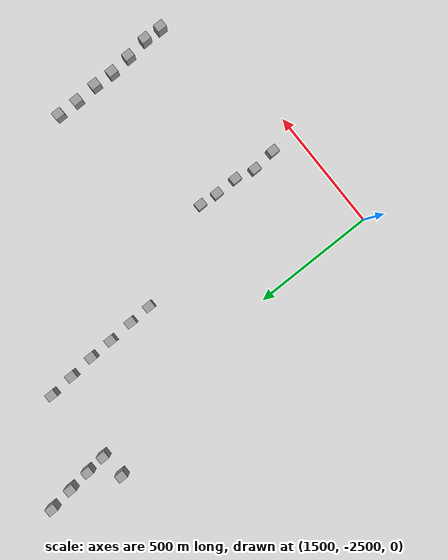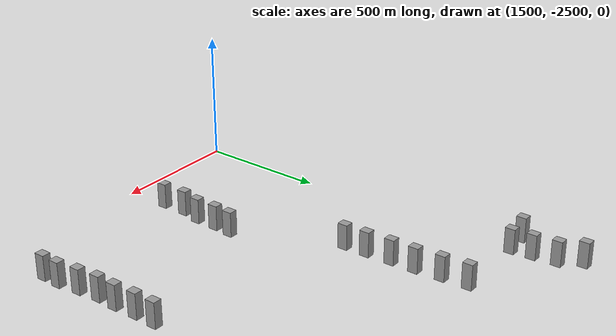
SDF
<sdf version="1.7">
 <world name="default">
  <model name="huge_building">
   <link name="link">
    <inertial>
     <mass>137299</mass>
     <inertia>
      <ixx>1.37911e+08</ixx>
      <ixy>0</ixy>
      <ixz>0</ixz>
      <iyy>1.32035e+08</iyy>
      <iyz>0</iyz>
      <izz>3.13216e+07</izz>
     </inertia>
    </inertial>
    <visual name="visual">
     <geometry><box><size>33.3468 40.3177 102.117</size></box></geometry>
     <material>
      <script><name>Gazebo/Grey</name><uri>file://media/materials/scripts/gazebo.material</uri></script>
      <shader type="pixel"/>
     </material>
    </visual>
    <collision name="collision">
     <geometry><box><size>33.3468 40.3177 102.117</size></box></geometry>
     <surface>
      <friction>
       <ode><mu>1</mu><mu2>1</mu2><fdir1>0 0 0</fdir1><slip1>0</slip1><slip2>0</slip2></ode>
       <torsional>
        <coefficient>1</coefficient>
        <patch_radius>0</patch_radius>
        <surface_radius>0</surface_radius>
        <use_patch_radius>1</use_patch_radius>
        <ode><slip>0</slip></ode>
       </torsional>
      </friction>
      <bounce><restitution_coefficient>0</restitution_coefficient><threshold>1e+06</threshold></bounce>
      <contact>
       <collide_without_contact>0</collide_without_contact>
       <collide_without_contact_bitmask>1</collide_without_contact_bitmask>
       <collide_bitmask>1</collide_bitmask>
       <ode>
        <soft_cfm>0</soft_cfm>
        <soft_erp>0.2</soft_erp>
        <kp>1e+13</kp>
        <kd>1</kd>
        <max_vel>0.01</max_vel>
        <min_depth>0</min_depth>
       </ode>
       <bullet>
        <split_impulse>1</split_impulse>
        <split_impulse_penetration_threshold>-0.01</split_impulse_penetration_threshold>
        <soft_cfm>0</soft_cfm>
        <soft_erp>0.2</soft_erp>
        <kp>1e+13</kp>
        <kd>1</kd>
       </bullet>
      </contact>
     </surface>
    </collision>
   </link>
   <static>0</static>
   <pose>2573.26 -2347.73 0.5 0 -0 0</pose>
  </model>
  <model name="huge_building_0">
   <link name="link">
    <inertial>
     <mass>137299</mass>
     <inertia>
      <ixx>1.37911e+08</ixx>
      <ixy>0</ixy>
      <ixz>0</ixz>
      <iyy>1.32035e+08</iyy>
      <iyz>0</iyz>
      <izz>3.13216e+07</izz>
     </inertia>
    </inertial>
    <visual name="visual">
     <geometry><box><size>33.3468 40.3177 102.117</size></box></geometry>
     <material>
      <script><name>Gazebo/Grey</name><uri>file://media/materials/scripts/gazebo.material</uri></script>
      <shader type="pixel"/>
     </material>
    </visual>
    <collision name="collision">
     <geometry><box><size>33.3468 40.3177 102.117</size></box></geometry>
     <surface>
      <friction>
       <ode><mu>1</mu><mu2>1</mu2><fdir1>0 0 0</fdir1><slip1>0</slip1><slip2>0</slip2></ode>
       <torsional>
        <coefficient>1</coefficient>
        <patch_radius>0</patch_radius>
        <surface_radius>0</surface_radius>
        <use_patch_radius>1</use_patch_radius>
        <ode><slip>0</slip></ode>
       </torsional>
      </friction>
      <bounce><restitution_coefficient>0</restitution_coefficient><threshold>1e+06</threshold></bounce>
      <contact>
       <collide_without_contact>0</collide_without_contact>
       <collide_without_contact_bitmask>1</collide_without_contact_bitmask>
       <collide_bitmask>1</collide_bitmask>
       <ode>
        <soft_cfm>0</soft_cfm>
        <soft_erp>0.2</soft_erp>
        <kp>1e+13</kp>
        <kd>1</kd>
        <max_vel>0.01</max_vel>
        <min_depth>0</min_depth>
       </ode>
       <bullet>
        <split_impulse>1</split_impulse>
        <split_impulse_penetration_threshold>-0.01</split_impulse_penetration_threshold>
        <soft_cfm>0</soft_cfm>
        <soft_erp>0.2</soft_erp>
        <kp>1e+13</kp>
        <kd>1</kd>
       </bullet>
      </contact>
     </surface>
    </collision>
   </link>
   <static>0</static>
   <pose>1927.83 -2388.05 6 0 -0 0</pose>
  </model>
  <model name="huge_building_2">
   <link name="link">
    <inertial>
     <mass>137299</mass>
     <inertia>
      <ixx>1.37911e+08</ixx>
      <ixy>0</ixy>
      <ixz>0</ixz>
      <iyy>1.32035e+08</iyy>
      <iyz>0</iyz>
      <izz>3.13216e+07</izz>
     </inertia>
    </inertial>
    <visual name="visual">
     <geometry><box><size>33.3468 40.3177 102.117</size></box></geometry>
     <material>
      <script><name>Gazebo/Grey</name><uri>file://media/materials/scripts/gazebo.material</uri></script>
      <shader type="pixel"/>
     </material>
    </visual>
    <collision name="collision">
     <geometry><box><size>33.3468 40.3177 102.117</size></box></geometry>
     <surface>
      <friction>
       <ode><mu>1</mu><mu2>1</mu2><fdir1>0 0 0</fdir1><slip1>0</slip1><slip2>0</slip2></ode>
       <torsional>
        <coefficient>1</coefficient>
        <patch_radius>0</patch_radius>
        <surface_radius>0</surface_radius>
        <use_patch_radius>1</use_patch_radius>
        <ode><slip>0</slip></ode>
       </torsional>
      </friction>
      <bounce><restitution_coefficient>0</restitution_coefficient><threshold>1e+06</threshold></bounce>
      <contact>
       <collide_without_contact>0</collide_without_contact>
       <collide_without_contact_bitmask>1</collide_without_contact_bitmask>
       <collide_bitmask>1</collide_bitmask>
       <ode>
        <soft_cfm>0</soft_cfm>
        <soft_erp>0.2</soft_erp>
        <kp>1e+13</kp>
        <kd>1</kd>
        <max_vel>0.01</max_vel>
        <min_depth>0</min_depth>
       </ode>
       <bullet>
        <split_impulse>1</split_impulse>
        <split_impulse_penetration_threshold>-0.01</split_impulse_penetration_threshold>
        <soft_cfm>0</soft_cfm>
        <soft_erp>0.2</soft_erp>
        <kp>1e+13</kp>
        <kd>1</kd>
       </bullet>
      </contact>
     </surface>
    </collision>
   </link>
   <static>0</static>
   <pose>1380.82 -867.37 23 0 -0 0</pose>
  </model>
  <model name="huge_building_10">
   <link name="link">
    <inertial>
     <mass>137299</mass>
     <inertia>
      <ixx>1.37911e+08</ixx>
      <ixy>0</ixy>
      <ixz>0</ixz>
      <iyy>1.32035e+08</iyy>
      <iyz>0</iyz>
      <izz>3.13216e+07</izz>
     </inertia>
    </inertial>
    <visual name="visual">
     <geometry><box><size>33.3468 40.3177 102.117</size></box></geometry>
     <material>
      <script><name>Gazebo/Grey</name><uri>file://media/materials/scripts/gazebo.material</uri></script>
      <shader type="pixel"/>
     </material>
    </visual>
    <collision name="collision">
     <geometry><box><size>33.3468 40.3177 102.117</size></box></geometry>
     <surface>
      <friction>
       <ode><mu>1</mu><mu2>1</mu2><fdir1>0 0 0</fdir1><slip1>0</slip1><slip2>0</slip2></ode>
       <torsional>
        <coefficient>1</coefficient>
        <patch_radius>0</patch_radius>
        <surface_radius>0</surface_radius>
        <use_patch_radius>1</use_patch_radius>
        <ode><slip>0</slip></ode>
       </torsional>
      </friction>
      <bounce><restitution_coefficient>0</restitution_coefficient><threshold>1e+06</threshold></bounce>
      <contact>
       <collide_without_contact>0</collide_without_contact>
       <collide_without_contact_bitmask>1</collide_without_contact_bitmask>
       <collide_bitmask>1</collide_bitmask>
       <ode>
        <soft_cfm>0</soft_cfm>
        <soft_erp>0.2</soft_erp>
        <kp>1e+13</kp>
        <kd>1</kd>
        <max_vel>0.01</max_vel>
        <min_depth>0</min_depth>
       </ode>
       <bullet>
        <split_impulse>1</split_impulse>
        <split_impulse_penetration_threshold>-0.01</split_impulse_penetration_threshold>
        <soft_cfm>0</soft_cfm>
        <soft_erp>0.2</soft_erp>
        <kp>1e+13</kp>
        <kd>1</kd>
       </bullet>
      </contact>
     </surface>
    </collision>
   </link>
   <static>0</static>
   <pose>1917.56 -2291.93 0 0 -0 0</pose>
  </model>
  <model name="huge_building_11">
   <link name="link">
    <inertial>
     <mass>137299</mass>
     <inertia>
      <ixx>1.37911e+08</ixx>
      <ixy>0</ixy>
      <ixz>0</ixz>
      <iyy>1.32035e+08</iyy>
      <iyz>0</iyz>
      <izz>3.13216e+07</izz>
     </inertia>
    </inertial>
    <visual name="visual">
     <geometry><box><size>33.3468 40.3177 102.117</size></box></geometry>
     <material>
      <script><name>Gazebo/Grey</name><uri>file://media/materials/scripts/gazebo.material</uri></script>
      <shader type="pixel"/>
     </material>
    </visual>
    <collision name="collision">
     <geometry><box><size>33.3468 40.3177 102.117</size></box></geometry>
     <surface>
      <friction>
       <ode><mu>1</mu><mu2>1</mu2><fdir1>0 0 0</fdir1><slip1>0</slip1><slip2>0</slip2></ode>
       <torsional>
        <coefficient>1</coefficient>
        <patch_radius>0</patch_radius>
        <surface_radius>0</surface_radius>
        <use_patch_radius>1</use_patch_radius>
        <ode><slip>0</slip></ode>
       </torsional>
      </friction>
      <bounce><restitution_coefficient>0</restitution_coefficient><threshold>1e+06</threshold></bounce>
      <contact>
       <collide_without_contact>0</collide_without_contact>
       <collide_without_contact_bitmask>1</collide_without_contact_bitmask>
       <collide_bitmask>1</collide_bitmask>
       <ode>
        <soft_cfm>0</soft_cfm>
        <soft_erp>0.2</soft_erp>
        <kp>1e+13</kp>
        <kd>1</kd>
        <max_vel>0.01</max_vel>
        <min_depth>0</min_depth>
       </ode>
       <bullet>
        <split_impulse>1</split_impulse>
        <split_impulse_penetration_threshold>-0.01</split_impulse_penetration_threshold>
        <soft_cfm>0</soft_cfm>
        <soft_erp>0.2</soft_erp>
        <kp>1e+13</kp>
        <kd>1</kd>
       </bullet>
      </contact>
     </surface>
    </collision>
   </link>
   <static>0</static>
   <pose>2575.01 -2273.29 0 0 -0 0</pose>
  </model>
  <model name="huge_building_15">
   <link name="link">
    <inertial>
     <mass>137299</mass>
     <inertia>
      <ixx>1.37911e+08</ixx>
      <ixy>0</ixy>
      <ixz>0</ixz>
      <iyy>1.32035e+08</iyy>
      <iyz>0</iyz>
      <izz>3.13216e+07</izz>
     </inertia>
    </inertial>
    <visual name="visual">
     <geometry><box><size>33.3468 40.3177 102.117</size></box></geometry>
     <material>
      <script><name>Gazebo/Grey</name><uri>file://media/materials/scripts/gazebo.material</uri></script>
      <shader type="pixel"/>
     </material>
    </visual>
    <collision name="collision">
     <geometry><box><size>33.3468 40.3177 102.117</size></box></geometry>
     <surface>
      <friction>
       <ode><mu>1</mu><mu2>1</mu2><fdir1>0 0 0</fdir1><slip1>0</slip1><slip2>0</slip2></ode>
       <torsional>
        <coefficient>1</coefficient>
        <patch_radius>0</patch_radius>
        <surface_radius>0</surface_radius>
        <use_patch_radius>1</use_patch_radius>
        <ode><slip>0</slip></ode>
       </torsional>
      </friction>
      <bounce><restitution_coefficient>0</restitution_coefficient><threshold>1e+06</threshold></bounce>
      <contact>
       <collide_without_contact>0</collide_without_contact>
       <collide_without_contact_bitmask>1</collide_without_contact_bitmask>
       <collide_bitmask>1</collide_bitmask>
       <ode>
        <soft_cfm>0</soft_cfm>
        <soft_erp>0.2</soft_erp>
        <kp>1e+13</kp>
        <kd>1</kd>
        <max_vel>0.01</max_vel>
        <min_depth>0</min_depth>
       </ode>
       <bullet>
        <split_impulse>1</split_impulse>
        <split_impulse_penetration_threshold>-0.01</split_impulse_penetration_threshold>
        <soft_cfm>0</soft_cfm>
        <soft_erp>0.2</soft_erp>
        <kp>1e+13</kp>
        <kd>1</kd>
       </bullet>
      </contact>
     </surface>
    </collision>
   </link>
   <static>0</static>
   <pose>1393.28 -963.742 0 0 -0 0</pose>
  </model>
  <model name="huge_building_16">
   <link name="link">
    <inertial>
     <mass>137299</mass>
     <inertia>
      <ixx>1.37911e+08</ixx>
      <ixy>0</ixy>
      <ixz>0</ixz>
      <iyy>1.32035e+08</iyy>
      <iyz>0</iyz>
      <izz>3.13216e+07</izz>
     </inertia>
    </inertial>
    <visual name="visual">
     <geometry><box><size>33.3468 40.3177 102.117</size></box></geometry>
     <material>
      <script><name>Gazebo/Grey</name><uri>file://media/materials/scripts/gazebo.material</uri></script>
      <shader type="pixel"/>
     </material>
    </visual>
    <collision name="collision">
     <geometry><box><size>33.3468 40.3177 102.117</size></box></geometry>
     <surface>
      <friction>
       <ode><mu>1</mu><mu2>1</mu2><fdir1>0 0 0</fdir1><slip1>0</slip1><slip2>0</slip2></ode>
       <torsional>
        <coefficient>1</coefficient>
        <patch_radius>0</patch_radius>
        <surface_radius>0</surface_radius>
        <use_patch_radius>1</use_patch_radius>
        <ode><slip>0</slip></ode>
       </torsional>
      </friction>
      <bounce><restitution_coefficient>0</restitution_coefficient><threshold>1e+06</threshold></bounce>
      <contact>
       <collide_without_contact>0</collide_without_contact>
       <collide_without_contact_bitmask>1</collide_without_contact_bitmask>
       <collide_bitmask>1</collide_bitmask>
       <ode>
        <soft_cfm>0</soft_cfm>
        <soft_erp>0.2</soft_erp>
        <kp>1e+13</kp>
        <kd>1</kd>
        <max_vel>0.01</max_vel>
        <min_depth>0</min_depth>
       </ode>
       <bullet>
        <split_impulse>1</split_impulse>
        <split_impulse_penetration_threshold>-0.01</split_impulse_penetration_threshold>
        <soft_cfm>0</soft_cfm>
        <soft_erp>0.2</soft_erp>
        <kp>1e+13</kp>
        <kd>1</kd>
       </bullet>
      </contact>
     </surface>
    </collision>
   </link>
   <static>0</static>
   <pose>1405.03 -1058.23 0 0 -0 0</pose>
  </model>
  <model name="huge_building_17">
   <link name="link">
    <inertial>
     <mass>137299</mass>
     <inertia>
      <ixx>1.37911e+08</ixx>
      <ixy>0</ixy>
      <ixz>0</ixz>
      <iyy>1.32035e+08</iyy>
      <iyz>0</iyz>
      <izz>3.13216e+07</izz>
     </inertia>
    </inertial>
    <visual name="visual">
     <geometry><box><size>33.3468 40.3177 102.117</size></box></geometry>
     <material>
      <script><name>Gazebo/Grey</name><uri>file://media/materials/scripts/gazebo.material</uri></script>
      <shader type="pixel"/>
     </material>
    </visual>
    <collision name="collision">
     <geometry><box><size>33.3468 40.3177 102.117</size></box></geometry>
     <surface>
      <friction>
       <ode><mu>1</mu><mu2>1</mu2><fdir1>0 0 0</fdir1><slip1>0</slip1><slip2>0</slip2></ode>
       <torsional>
        <coefficient>1</coefficient>
        <patch_radius>0</patch_radius>
        <surface_radius>0</surface_radius>
        <use_patch_radius>1</use_patch_radius>
        <ode><slip>0</slip></ode>
       </torsional>
      </friction>
      <bounce><restitution_coefficient>0</restitution_coefficient><threshold>1e+06</threshold></bounce>
      <contact>
       <collide_without_contact>0</collide_without_contact>
       <collide_without_contact_bitmask>1</collide_without_contact_bitmask>
       <collide_bitmask>1</collide_bitmask>
       <ode>
        <soft_cfm>0</soft_cfm>
        <soft_erp>0.2</soft_erp>
        <kp>1e+13</kp>
        <kd>1</kd>
        <max_vel>0.01</max_vel>
        <min_depth>0</min_depth>
       </ode>
       <bullet>
        <split_impulse>1</split_impulse>
        <split_impulse_penetration_threshold>-0.01</split_impulse_penetration_threshold>
        <soft_cfm>0</soft_cfm>
        <soft_erp>0.2</soft_erp>
        <kp>1e+13</kp>
        <kd>1</kd>
       </bullet>
      </contact>
     </surface>
    </collision>
   </link>
   <static>0</static>
   <pose>1414.1 -1141.08 0 0 -0 0</pose>
  </model>
  <model name="huge_building_18">
   <link name="link">
    <inertial>
     <mass>137299</mass>
     <inertia>
      <ixx>1.37911e+08</ixx>
      <ixy>0</ixy>
      <ixz>0</ixz>
      <iyy>1.32035e+08</iyy>
      <iyz>0</iyz>
      <izz>3.13216e+07</izz>
     </inertia>
    </inertial>
    <visual name="visual">
     <geometry><box><size>33.3468 40.3177 102.117</size></box></geometry>
     <material>
      <script><name>Gazebo/Grey</name><uri>file://media/materials/scripts/gazebo.material</uri></script>
      <shader type="pixel"/>
     </material>
    </visual>
    <collision name="collision">
     <geometry><box><size>33.3468 40.3177 102.117</size></box></geometry>
     <surface>
      <friction>
       <ode><mu>1</mu><mu2>1</mu2><fdir1>0 0 0</fdir1><slip1>0</slip1><slip2>0</slip2></ode>
       <torsional>
        <coefficient>1</coefficient>
        <patch_radius>0</patch_radius>
        <surface_radius>0</surface_radius>
        <use_patch_radius>1</use_patch_radius>
        <ode><slip>0</slip></ode>
       </torsional>
      </friction>
      <bounce><restitution_coefficient>0</restitution_coefficient><threshold>1e+06</threshold></bounce>
      <contact>
       <collide_without_contact>0</collide_without_contact>
       <collide_without_contact_bitmask>1</collide_without_contact_bitmask>
       <collide_bitmask>1</collide_bitmask>
       <ode>
        <soft_cfm>0</soft_cfm>
        <soft_erp>0.2</soft_erp>
        <kp>1e+13</kp>
        <kd>1</kd>
        <max_vel>0.01</max_vel>
        <min_depth>0</min_depth>
       </ode>
       <bullet>
        <split_impulse>1</split_impulse>
        <split_impulse_penetration_threshold>-0.01</split_impulse_penetration_threshold>
        <soft_cfm>0</soft_cfm>
        <soft_erp>0.2</soft_erp>
        <kp>1e+13</kp>
        <kd>1</kd>
       </bullet>
      </contact>
     </surface>
    </collision>
   </link>
   <static>0</static>
   <pose>1934.74 -2209.04 0 0 -0 0</pose>
  </model>
  <model name="huge_building_19">
   <link name="link">
    <inertial>
     <mass>137299</mass>
     <inertia>
      <ixx>1.37911e+08</ixx>
      <ixy>0</ixy>
      <ixz>0</ixz>
      <iyy>1.32035e+08</iyy>
      <iyz>0</iyz>
      <izz>3.13216e+07</izz>
     </inertia>
    </inertial>
    <visual name="visual">
     <geometry><box><size>33.3468 40.3177 102.117</size></box></geometry>
     <material>
      <script><name>Gazebo/Grey</name><uri>file://media/materials/scripts/gazebo.material</uri></script>
      <shader type="pixel"/>
     </material>
    </visual>
    <collision name="collision">
     <geometry><box><size>33.3468 40.3177 102.117</size></box></geometry>
     <surface>
      <friction>
       <ode><mu>1</mu><mu2>1</mu2><fdir1>0 0 0</fdir1><slip1>0</slip1><slip2>0</slip2></ode>
       <torsional>
        <coefficient>1</coefficient>
        <patch_radius>0</patch_radius>
        <surface_radius>0</surface_radius>
        <use_patch_radius>1</use_patch_radius>
        <ode><slip>0</slip></ode>
       </torsional>
      </friction>
      <bounce><restitution_coefficient>0</restitution_coefficient><threshold>1e+06</threshold></bounce>
      <contact>
       <collide_without_contact>0</collide_without_contact>
       <collide_without_contact_bitmask>1</collide_without_contact_bitmask>
       <collide_bitmask>1</collide_bitmask>
       <ode>
        <soft_cfm>0</soft_cfm>
        <soft_erp>0.2</soft_erp>
        <kp>1e+13</kp>
        <kd>1</kd>
        <max_vel>0.01</max_vel>
        <min_depth>0</min_depth>
       </ode>
       <bullet>
        <split_impulse>1</split_impulse>
        <split_impulse_penetration_threshold>-0.01</split_impulse_penetration_threshold>
        <soft_cfm>0</soft_cfm>
        <soft_erp>0.2</soft_erp>
        <kp>1e+13</kp>
        <kd>1</kd>
       </bullet>
      </contact>
     </surface>
    </collision>
   </link>
   <static>0</static>
   <pose>1934.12 -2118.06 0 0 -0 0</pose>
  </model>
  <model name="huge_building_20">
   <link name="link">
    <inertial>
     <mass>137299</mass>
     <inertia>
      <ixx>1.37911e+08</ixx>
      <ixy>0</ixy>
      <ixz>0</ixz>
      <iyy>1.32035e+08</iyy>
      <iyz>0</iyz>
      <izz>3.13216e+07</izz>
     </inertia>
    </inertial>
    <visual name="visual">
     <geometry><box><size>33.3468 40.3177 102.117</size></box></geometry>
     <material>
      <script><name>Gazebo/Grey</name><uri>file://media/materials/scripts/gazebo.material</uri></script>
      <shader type="pixel"/>
     </material>
    </visual>
    <collision name="collision">
     <geometry><box><size>33.3468 40.3177 102.117</size></box></geometry>
     <surface>
      <friction>
       <ode><mu>1</mu><mu2>1</mu2><fdir1>0 0 0</fdir1><slip1>0</slip1><slip2>0</slip2></ode>
       <torsional>
        <coefficient>1</coefficient>
        <patch_radius>0</patch_radius>
        <surface_radius>0</surface_radius>
        <use_patch_radius>1</use_patch_radius>
        <ode><slip>0</slip></ode>
       </torsional>
      </friction>
      <bounce><restitution_coefficient>0</restitution_coefficient><threshold>1e+06</threshold></bounce>
      <contact>
       <collide_without_contact>0</collide_without_contact>
       <collide_without_contact_bitmask>1</collide_without_contact_bitmask>
       <collide_bitmask>1</collide_bitmask>
       <ode>
        <soft_cfm>0</soft_cfm>
        <soft_erp>0.2</soft_erp>
        <kp>1e+13</kp>
        <kd>1</kd>
        <max_vel>0.01</max_vel>
        <min_depth>0</min_depth>
       </ode>
       <bullet>
        <split_impulse>1</split_impulse>
        <split_impulse_penetration_threshold>-0.01</split_impulse_penetration_threshold>
        <soft_cfm>0</soft_cfm>
        <soft_erp>0.2</soft_erp>
        <kp>1e+13</kp>
        <kd>1</kd>
       </bullet>
      </contact>
     </surface>
    </collision>
   </link>
   <static>0</static>
   <pose>1939.83 -2041.92 0 0 -0 0</pose>
  </model>
  <model name="huge_building_21">
   <link name="link">
    <inertial>
     <mass>137299</mass>
     <inertia>
      <ixx>1.37911e+08</ixx>
      <ixy>0</ixy>
      <ixz>0</ixz>
      <iyy>1.32035e+08</iyy>
      <iyz>0</iyz>
      <izz>3.13216e+07</izz>
     </inertia>
    </inertial>
    <visual name="visual">
     <geometry><box><size>33.3468 40.3177 102.117</size></box></geometry>
     <material>
      <script><name>Gazebo/Grey</name><uri>file://media/materials/scripts/gazebo.material</uri></script>
      <shader type="pixel"/>
     </material>
    </visual>
    <collision name="collision">
     <geometry><box><size>33.3468 40.3177 102.117</size></box></geometry>
     <surface>
      <friction>
       <ode><mu>1</mu><mu2>1</mu2><fdir1>0 0 0</fdir1><slip1>0</slip1><slip2>0</slip2></ode>
       <torsional>
        <coefficient>1</coefficient>
        <patch_radius>0</patch_radius>
        <surface_radius>0</surface_radius>
        <use_patch_radius>1</use_patch_radius>
        <ode><slip>0</slip></ode>
       </torsional>
      </friction>
      <bounce><restitution_coefficient>0</restitution_coefficient><threshold>1e+06</threshold></bounce>
      <contact>
       <collide_without_contact>0</collide_without_contact>
       <collide_without_contact_bitmask>1</collide_without_contact_bitmask>
       <collide_bitmask>1</collide_bitmask>
       <ode>
        <soft_cfm>0</soft_cfm>
        <soft_erp>0.2</soft_erp>
        <kp>1e+13</kp>
        <kd>1</kd>
        <max_vel>0.01</max_vel>
        <min_depth>0</min_depth>
       </ode>
       <bullet>
        <split_impulse>1</split_impulse>
        <split_impulse_penetration_threshold>-0.01</split_impulse_penetration_threshold>
        <soft_cfm>0</soft_cfm>
        <soft_erp>0.2</soft_erp>
        <kp>1e+13</kp>
        <kd>1</kd>
       </bullet>
      </contact>
     </surface>
    </collision>
   </link>
   <static>0</static>
   <pose>2562.68 -2182.09 0 0 -0 0</pose>
  </model>
  <model name="huge_building_22">
   <link name="link">
    <inertial>
     <mass>137299</mass>
     <inertia>
      <ixx>1.37911e+08</ixx>
      <ixy>0</ixy>
      <ixz>0</ixz>
      <iyy>1.32035e+08</iyy>
      <iyz>0</iyz>
      <izz>3.13216e+07</izz>
     </inertia>
    </inertial>
    <visual name="visual">
     <geometry><box><size>33.3468 40.3177 102.117</size></box></geometry>
     <material>
      <script><name>Gazebo/Grey</name><uri>file://media/materials/scripts/gazebo.material</uri></script>
      <shader type="pixel"/>
     </material>
    </visual>
    <collision name="collision">
     <geometry><box><size>33.3468 40.3177 102.117</size></box></geometry>
     <surface>
      <friction>
       <ode><mu>1</mu><mu2>1</mu2><fdir1>0 0 0</fdir1><slip1>0</slip1><slip2>0</slip2></ode>
       <torsional>
        <coefficient>1</coefficient>
        <patch_radius>0</patch_radius>
        <surface_radius>0</surface_radius>
        <use_patch_radius>1</use_patch_radius>
        <ode><slip>0</slip></ode>
       </torsional>
      </friction>
      <bounce><restitution_coefficient>0</restitution_coefficient><threshold>1e+06</threshold></bounce>
      <contact>
       <collide_without_contact>0</collide_without_contact>
       <collide_without_contact_bitmask>1</collide_without_contact_bitmask>
       <collide_bitmask>1</collide_bitmask>
       <ode>
        <soft_cfm>0</soft_cfm>
        <soft_erp>0.2</soft_erp>
        <kp>1e+13</kp>
        <kd>1</kd>
        <max_vel>0.01</max_vel>
        <min_depth>0</min_depth>
       </ode>
       <bullet>
        <split_impulse>1</split_impulse>
        <split_impulse_penetration_threshold>-0.01</split_impulse_penetration_threshold>
        <soft_cfm>0</soft_cfm>
        <soft_erp>0.2</soft_erp>
        <kp>1e+13</kp>
        <kd>1</kd>
       </bullet>
      </contact>
     </surface>
    </collision>
   </link>
   <static>0</static>
   <pose>2553.74 -2093.87 0 0 -0 0</pose>
  </model>
  <model name="huge_building_23">
   <link name="link">
    <inertial>
     <mass>137299</mass>
     <inertia>
      <ixx>1.37911e+08</ixx>
      <ixy>0</ixy>
      <ixz>0</ixz>
      <iyy>1.32035e+08</iyy>
      <iyz>0</iyz>
      <izz>3.13216e+07</izz>
     </inertia>
    </inertial>
    <visual name="visual">
     <geometry><box><size>33.3468 40.3177 102.117</size></box></geometry>
     <material>
      <script><name>Gazebo/Grey</name><uri>file://media/materials/scripts/gazebo.material</uri></script>
      <shader type="pixel"/>
     </material>
    </visual>
    <collision name="collision">
     <geometry><box><size>33.3468 40.3177 102.117</size></box></geometry>
     <surface>
      <friction>
       <ode><mu>1</mu><mu2>1</mu2><fdir1>0 0 0</fdir1><slip1>0</slip1><slip2>0</slip2></ode>
       <torsional>
        <coefficient>1</coefficient>
        <patch_radius>0</patch_radius>
        <surface_radius>0</surface_radius>
        <use_patch_radius>1</use_patch_radius>
        <ode><slip>0</slip></ode>
       </torsional>
      </friction>
      <bounce><restitution_coefficient>0</restitution_coefficient><threshold>1e+06</threshold></bounce>
      <contact>
       <collide_without_contact>0</collide_without_contact>
       <collide_without_contact_bitmask>1</collide_without_contact_bitmask>
       <collide_bitmask>1</collide_bitmask>
       <ode>
        <soft_cfm>0</soft_cfm>
        <soft_erp>0.2</soft_erp>
        <kp>1e+13</kp>
        <kd>1</kd>
        <max_vel>0.01</max_vel>
        <min_depth>0</min_depth>
       </ode>
       <bullet>
        <split_impulse>1</split_impulse>
        <split_impulse_penetration_threshold>-0.01</split_impulse_penetration_threshold>
        <soft_cfm>0</soft_cfm>
        <soft_erp>0.2</soft_erp>
        <kp>1e+13</kp>
        <kd>1</kd>
       </bullet>
      </contact>
     </surface>
    </collision>
   </link>
   <static>0</static>
   <pose>2556.65 -2011.24 0 0 -0 0</pose>
  </model>
  <model name="huge_building_24">
   <link name="link">
    <inertial>
     <mass>137299</mass>
     <inertia>
      <ixx>1.37911e+08</ixx>
      <ixy>0</ixy>
      <ixz>0</ixz>
      <iyy>1.32035e+08</iyy>
      <iyz>0</iyz>
      <izz>3.13216e+07</izz>
     </inertia>
    </inertial>
    <visual name="visual">
     <geometry><box><size>33.3468 40.3177 102.117</size></box></geometry>
     <material>
      <script><name>Gazebo/Grey</name><uri>file://media/materials/scripts/gazebo.material</uri></script>
      <shader type="pixel"/>
     </material>
    </visual>
    <collision name="collision">
     <geometry><box><size>33.3468 40.3177 102.117</size></box></geometry>
     <surface>
      <friction>
       <ode><mu>1</mu><mu2>1</mu2><fdir1>0 0 0</fdir1><slip1>0</slip1><slip2>0</slip2></ode>
       <torsional>
        <coefficient>1</coefficient>
        <patch_radius>0</patch_radius>
        <surface_radius>0</surface_radius>
        <use_patch_radius>1</use_patch_radius>
        <ode><slip>0</slip></ode>
       </torsional>
      </friction>
      <bounce><restitution_coefficient>0</restitution_coefficient><threshold>1e+06</threshold></bounce>
      <contact>
       <collide_without_contact>0</collide_without_contact>
       <collide_without_contact_bitmask>1</collide_without_contact_bitmask>
       <collide_bitmask>1</collide_bitmask>
       <ode>
        <soft_cfm>0</soft_cfm>
        <soft_erp>0.2</soft_erp>
        <kp>1e+13</kp>
        <kd>1</kd>
        <max_vel>0.01</max_vel>
        <min_depth>0</min_depth>
       </ode>
       <bullet>
        <split_impulse>1</split_impulse>
        <split_impulse_penetration_threshold>-0.01</split_impulse_penetration_threshold>
        <soft_cfm>0</soft_cfm>
        <soft_erp>0.2</soft_erp>
        <kp>1e+13</kp>
        <kd>1</kd>
       </bullet>
      </contact>
     </surface>
    </collision>
   </link>
   <static>0</static>
   <pose>2552.29 -1919.01 0 0 -0 0</pose>
  </model>
  <model name="huge_building_25">
   <link name="link">
    <inertial>
     <mass>137299</mass>
     <inertia>
      <ixx>1.37911e+08</ixx>
      <ixy>0</ixy>
      <ixz>0</ixz>
      <iyy>1.32035e+08</iyy>
      <iyz>0</iyz>
      <izz>3.13216e+07</izz>
     </inertia>
    </inertial>
    <visual name="visual">
     <geometry><box><size>33.3468 40.3177 102.117</size></box></geometry>
     <material>
      <script><name>Gazebo/Grey</name><uri>file://media/materials/scripts/gazebo.material</uri></script>
      <shader type="pixel"/>
     </material>
    </visual>
    <collision name="collision">
     <geometry><box><size>33.3468 40.3177 102.117</size></box></geometry>
     <surface>
      <friction>
       <ode><mu>1</mu><mu2>1</mu2><fdir1>0 0 0</fdir1><slip1>0</slip1><slip2>0</slip2></ode>
       <torsional>
        <coefficient>1</coefficient>
        <patch_radius>0</patch_radius>
        <surface_radius>0</surface_radius>
        <use_patch_radius>1</use_patch_radius>
        <ode><slip>0</slip></ode>
       </torsional>
      </friction>
      <bounce><restitution_coefficient>0</restitution_coefficient><threshold>1e+06</threshold></bounce>
      <contact>
       <collide_without_contact>0</collide_without_contact>
       <collide_without_contact_bitmask>1</collide_without_contact_bitmask>
       <collide_bitmask>1</collide_bitmask>
       <ode>
        <soft_cfm>0</soft_cfm>
        <soft_erp>0.2</soft_erp>
        <kp>1e+13</kp>
        <kd>1</kd>
        <max_vel>0.01</max_vel>
        <min_depth>0</min_depth>
       </ode>
       <bullet>
        <split_impulse>1</split_impulse>
        <split_impulse_penetration_threshold>-0.01</split_impulse_penetration_threshold>
        <soft_cfm>0</soft_cfm>
        <soft_erp>0.2</soft_erp>
        <kp>1e+13</kp>
        <kd>1</kd>
       </bullet>
      </contact>
     </surface>
    </collision>
   </link>
   <static>0</static>
   <pose>2553.79 -1831.28 0 0 -0 0</pose>
  </model>
  <model name="huge_building_34">
   <link name="link">
    <inertial>
     <mass>137299</mass>
     <inertia>
      <ixx>1.37911e+08</ixx>
      <ixy>0</ixy>
      <ixz>0</ixz>
      <iyy>1.32035e+08</iyy>
      <iyz>0</iyz>
      <izz>3.13216e+07</izz>
     </inertia>
    </inertial>
    <visual name="visual">
     <geometry><box><size>33.3468 40.3177 102.117</size></box></geometry>
     <material>
      <script><name>Gazebo/Grey</name><uri>file://media/materials/scripts/gazebo.material</uri></script>
      <shader type="pixel"/>
     </material>
    </visual>
    <collision name="collision">
     <geometry><box><size>33.3468 40.3177 102.117</size></box></geometry>
     <surface>
      <friction>
       <ode><mu>1</mu><mu2>1</mu2><fdir1>0 0 0</fdir1><slip1>0</slip1><slip2>0</slip2></ode>
       <torsional>
        <coefficient>1</coefficient>
        <patch_radius>0</patch_radius>
        <surface_radius>0</surface_radius>
        <use_patch_radius>1</use_patch_radius>
        <ode><slip>0</slip></ode>
       </torsional>
      </friction>
      <bounce><restitution_coefficient>0</restitution_coefficient><threshold>1e+06</threshold></bounce>
      <contact>
       <collide_without_contact>0</collide_without_contact>
       <collide_without_contact_bitmask>1</collide_without_contact_bitmask>
       <collide_bitmask>1</collide_bitmask>
       <ode>
        <soft_cfm>0</soft_cfm>
        <soft_erp>0.2</soft_erp>
        <kp>1e+13</kp>
        <kd>1</kd>
        <max_vel>0.01</max_vel>
        <min_depth>0</min_depth>
       </ode>
       <bullet>
        <split_impulse>1</split_impulse>
        <split_impulse_penetration_threshold>-0.01</split_impulse_penetration_threshold>
        <soft_cfm>0</soft_cfm>
        <soft_erp>0.2</soft_erp>
        <kp>1e+13</kp>
        <kd>1</kd>
       </bullet>
      </contact>
     </surface>
    </collision>
   </link>
   <static>0</static>
   <pose>1312.17 -1150.91 0 0 -0 0</pose>
  </model>
  <model name="huge_building_74">
   <link name="link">
    <inertial>
     <mass>137299</mass>
     <inertia>
      <ixx>1.37911e+08</ixx>
      <ixy>0</ixy>
      <ixz>0</ixz>
      <iyy>1.32035e+08</iyy>
      <iyz>0</iyz>
      <izz>3.13216e+07</izz>
     </inertia>
    </inertial>
    <visual name="visual">
     <geometry><box><size>33.3468 40.3177 102.117</size></box></geometry>
     <material>
      <script><name>Gazebo/Grey</name><uri>file://media/materials/scripts/gazebo.material</uri></script>
      <shader type="pixel"/>
     </material>
    </visual>
    <collision name="collision">
     <geometry><box><size>33.3468 40.3177 102.117</size></box></geometry>
     <surface>
      <friction>
       <ode><mu>1</mu><mu2>1</mu2><fdir1>0 0 0</fdir1><slip1>0</slip1><slip2>0</slip2></ode>
       <torsional>
        <coefficient>1</coefficient>
        <patch_radius>0</patch_radius>
        <surface_radius>0</surface_radius>
        <use_patch_radius>1</use_patch_radius>
        <ode><slip>0</slip></ode>
       </torsional>
      </friction>
      <bounce><restitution_coefficient>0</restitution_coefficient><threshold>1e+06</threshold></bounce>
      <contact>
       <collide_without_contact>0</collide_without_contact>
       <collide_without_contact_bitmask>1</collide_without_contact_bitmask>
       <collide_bitmask>1</collide_bitmask>
       <ode>
        <soft_cfm>0</soft_cfm>
        <soft_erp>0.2</soft_erp>
        <kp>1e+13</kp>
        <kd>1</kd>
        <max_vel>0.01</max_vel>
        <min_depth>0</min_depth>
       </ode>
       <bullet>
        <split_impulse>1</split_impulse>
        <split_impulse_penetration_threshold>-0.01</split_impulse_penetration_threshold>
        <soft_cfm>0</soft_cfm>
        <soft_erp>0.2</soft_erp>
        <kp>1e+13</kp>
        <kd>1</kd>
       </bullet>
      </contact>
     </surface>
    </collision>
   </link>
   <static>0</static>
   <pose>1756.62 -1641.22 0 0 -0 0</pose>
  </model>
  <model name="huge_building_75">
   <link name="link">
    <inertial>
     <mass>137299</mass>
     <inertia>
      <ixx>1.37911e+08</ixx>
      <ixy>0</ixy>
      <ixz>0</ixz>
      <iyy>1.32035e+08</iyy>
      <iyz>0</iyz>
      <izz>3.13216e+07</izz>
     </inertia>
    </inertial>
    <visual name="visual">
     <geometry><box><size>33.3468 40.3177 102.117</size></box></geometry>
     <material>
      <script><name>Gazebo/Grey</name><uri>file://media/materials/scripts/gazebo.material</uri></script>
      <shader type="pixel"/>
     </material>
    </visual>
    <collision name="collision">
     <geometry><box><size>33.3468 40.3177 102.117</size></box></geometry>
     <surface>
      <friction>
       <ode><mu>1</mu><mu2>1</mu2><fdir1>0 0 0</fdir1><slip1>0</slip1><slip2>0</slip2></ode>
       <torsional>
        <coefficient>1</coefficient>
        <patch_radius>0</patch_radius>
        <surface_radius>0</surface_radius>
        <use_patch_radius>1</use_patch_radius>
        <ode><slip>0</slip></ode>
       </torsional>
      </friction>
      <bounce><restitution_coefficient>0</restitution_coefficient><threshold>1e+06</threshold></bounce>
      <contact>
       <collide_without_contact>0</collide_without_contact>
       <collide_without_contact_bitmask>1</collide_without_contact_bitmask>
       <collide_bitmask>1</collide_bitmask>
       <ode>
        <soft_cfm>0</soft_cfm>
        <soft_erp>0.2</soft_erp>
        <kp>1e+13</kp>
        <kd>1</kd>
        <max_vel>0.01</max_vel>
        <min_depth>0</min_depth>
       </ode>
       <bullet>
        <split_impulse>1</split_impulse>
        <split_impulse_penetration_threshold>-0.01</split_impulse_penetration_threshold>
        <soft_cfm>0</soft_cfm>
        <soft_erp>0.2</soft_erp>
        <kp>1e+13</kp>
        <kd>1</kd>
       </bullet>
      </contact>
     </surface>
    </collision>
   </link>
   <static>0</static>
   <pose>1752.95 -1547.35 0 0 -0 0</pose>
  </model>
  <model name="huge_building_76">
   <link name="link">
    <inertial>
     <mass>137299</mass>
     <inertia>
      <ixx>1.37911e+08</ixx>
      <ixy>0</ixy>
      <ixz>0</ixz>
      <iyy>1.32035e+08</iyy>
      <iyz>0</iyz>
      <izz>3.13216e+07</izz>
     </inertia>
    </inertial>
    <visual name="visual">
     <geometry><box><size>33.3468 40.3177 102.117</size></box></geometry>
     <material>
      <script><name>Gazebo/Grey</name><uri>file://media/materials/scripts/gazebo.material</uri></script>
      <shader type="pixel"/>
     </material>
    </visual>
    <collision name="collision">
     <geometry><box><size>33.3468 40.3177 102.117</size></box></geometry>
     <surface>
      <friction>
       <ode><mu>1</mu><mu2>1</mu2><fdir1>0 0 0</fdir1><slip1>0</slip1><slip2>0</slip2></ode>
       <torsional>
        <coefficient>1</coefficient>
        <patch_radius>0</patch_radius>
        <surface_radius>0</surface_radius>
        <use_patch_radius>1</use_patch_radius>
        <ode><slip>0</slip></ode>
       </torsional>
      </friction>
      <bounce><restitution_coefficient>0</restitution_coefficient><threshold>1e+06</threshold></bounce>
      <contact>
       <collide_without_contact>0</collide_without_contact>
       <collide_without_contact_bitmask>1</collide_without_contact_bitmask>
       <collide_bitmask>1</collide_bitmask>
       <ode>
        <soft_cfm>0</soft_cfm>
        <soft_erp>0.2</soft_erp>
        <kp>1e+13</kp>
        <kd>1</kd>
        <max_vel>0.01</max_vel>
        <min_depth>0</min_depth>
       </ode>
       <bullet>
        <split_impulse>1</split_impulse>
        <split_impulse_penetration_threshold>-0.01</split_impulse_penetration_threshold>
        <soft_cfm>0</soft_cfm>
        <soft_erp>0.2</soft_erp>
        <kp>1e+13</kp>
        <kd>1</kd>
       </bullet>
      </contact>
     </surface>
    </collision>
   </link>
   <static>0</static>
   <pose>1746.31 -1443.57 0 0 -0 0</pose>
  </model>
  <model name="huge_building_77">
   <link name="link">
    <inertial>
     <mass>137299</mass>
     <inertia>
      <ixx>1.37911e+08</ixx>
      <ixy>0</ixy>
      <ixz>0</ixz>
      <iyy>1.32035e+08</iyy>
      <iyz>0</iyz>
      <izz>3.13216e+07</izz>
     </inertia>
    </inertial>
    <visual name="visual">
     <geometry><box><size>33.3468 40.3177 102.117</size></box></geometry>
     <material>
      <script><name>Gazebo/Grey</name><uri>file://media/materials/scripts/gazebo.material</uri></script>
      <shader type="pixel"/>
     </material>
    </visual>
    <collision name="collision">
     <geometry><box><size>33.3468 40.3177 102.117</size></box></geometry>
     <surface>
      <friction>
       <ode><mu>1</mu><mu2>1</mu2><fdir1>0 0 0</fdir1><slip1>0</slip1><slip2>0</slip2></ode>
       <torsional>
        <coefficient>1</coefficient>
        <patch_radius>0</patch_radius>
        <surface_radius>0</surface_radius>
        <use_patch_radius>1</use_patch_radius>
        <ode><slip>0</slip></ode>
       </torsional>
      </friction>
      <bounce><restitution_coefficient>0</restitution_coefficient><threshold>1e+06</threshold></bounce>
      <contact>
       <collide_without_contact>0</collide_without_contact>
       <collide_without_contact_bitmask>1</collide_without_contact_bitmask>
       <collide_bitmask>1</collide_bitmask>
       <ode>
        <soft_cfm>0</soft_cfm>
        <soft_erp>0.2</soft_erp>
        <kp>1e+13</kp>
        <kd>1</kd>
        <max_vel>0.01</max_vel>
        <min_depth>0</min_depth>
       </ode>
       <bullet>
        <split_impulse>1</split_impulse>
        <split_impulse_penetration_threshold>-0.01</split_impulse_penetration_threshold>
        <soft_cfm>0</soft_cfm>
        <soft_erp>0.2</soft_erp>
        <kp>1e+13</kp>
        <kd>1</kd>
       </bullet>
      </contact>
     </surface>
    </collision>
   </link>
   <static>0</static>
   <pose>1742.4 -1344.35 0 0 -0 0</pose>
  </model>
  <model name="huge_building_78">
   <link name="link">
    <inertial>
     <mass>137299</mass>
     <inertia>
      <ixx>1.37911e+08</ixx>
      <ixy>0</ixy>
      <ixz>0</ixz>
      <iyy>1.32035e+08</iyy>
      <iyz>0</iyz>
      <izz>3.13216e+07</izz>
     </inertia>
    </inertial>
    <visual name="visual">
     <geometry><box><size>33.3468 40.3177 102.117</size></box></geometry>
     <material>
      <script><name>Gazebo/Grey</name><uri>file://media/materials/scripts/gazebo.material</uri></script>
      <shader type="pixel"/>
     </material>
    </visual>
    <collision name="collision">
     <geometry><box><size>33.3468 40.3177 102.117</size></box></geometry>
     <surface>
      <friction>
       <ode><mu>1</mu><mu2>1</mu2><fdir1>0 0 0</fdir1><slip1>0</slip1><slip2>0</slip2></ode>
       <torsional>
        <coefficient>1</coefficient>
        <patch_radius>0</patch_radius>
        <surface_radius>0</surface_radius>
        <use_patch_radius>1</use_patch_radius>
        <ode><slip>0</slip></ode>
       </torsional>
      </friction>
      <bounce><restitution_coefficient>0</restitution_coefficient><threshold>1e+06</threshold></bounce>
      <contact>
       <collide_without_contact>0</collide_without_contact>
       <collide_without_contact_bitmask>1</collide_without_contact_bitmask>
       <collide_bitmask>1</collide_bitmask>
       <ode>
        <soft_cfm>0</soft_cfm>
        <soft_erp>0.2</soft_erp>
        <kp>1e+13</kp>
        <kd>1</kd>
        <max_vel>0.01</max_vel>
        <min_depth>0</min_depth>
       </ode>
       <bullet>
        <split_impulse>1</split_impulse>
        <split_impulse_penetration_threshold>-0.01</split_impulse_penetration_threshold>
        <soft_cfm>0</soft_cfm>
        <soft_erp>0.2</soft_erp>
        <kp>1e+13</kp>
        <kd>1</kd>
       </bullet>
      </contact>
     </surface>
    </collision>
   </link>
   <static>0</static>
   <pose>1732.4 -1239.64 0 0 -0 0</pose>
  </model>
  <model name="huge_building_79">
   <link name="link">
    <inertial>
     <mass>137299</mass>
     <inertia>
      <ixx>1.37911e+08</ixx>
      <ixy>0</ixy>
      <ixz>0</ixz>
      <iyy>1.32035e+08</iyy>
      <iyz>0</iyz>
      <izz>3.13216e+07</izz>
     </inertia>
    </inertial>
    <visual name="visual">
     <geometry><box><size>33.3468 40.3177 102.117</size></box></geometry>
     <material>
      <script><name>Gazebo/Grey</name><uri>file://media/materials/scripts/gazebo.material</uri></script>
      <shader type="pixel"/>
     </material>
    </visual>
    <collision name="collision">
     <geometry><box><size>33.3468 40.3177 102.117</size></box></geometry>
     <surface>
      <friction>
       <ode><mu>1</mu><mu2>1</mu2><fdir1>0 0 0</fdir1><slip1>0</slip1><slip2>0</slip2></ode>
       <torsional>
        <coefficient>1</coefficient>
        <patch_radius>0</patch_radius>
        <surface_radius>0</surface_radius>
        <use_patch_radius>1</use_patch_radius>
        <ode><slip>0</slip></ode>
       </torsional>
      </friction>
      <bounce><restitution_coefficient>0</restitution_coefficient><threshold>1e+06</threshold></bounce>
      <contact>
       <collide_without_contact>0</collide_without_contact>
       <collide_without_contact_bitmask>1</collide_without_contact_bitmask>
       <collide_bitmask>1</collide_bitmask>
       <ode>
        <soft_cfm>0</soft_cfm>
        <soft_erp>0.2</soft_erp>
        <kp>1e+13</kp>
        <kd>1</kd>
        <max_vel>0.01</max_vel>
        <min_depth>0</min_depth>
       </ode>
       <bullet>
        <split_impulse>1</split_impulse>
        <split_impulse_penetration_threshold>-0.01</split_impulse_penetration_threshold>
        <soft_cfm>0</soft_cfm>
        <soft_erp>0.2</soft_erp>
        <kp>1e+13</kp>
        <kd>1</kd>
       </bullet>
      </contact>
     </surface>
    </collision>
   </link>
   <static>0</static>
   <pose>1723.27 -1135.03 0 0 -0 0</pose>
  </model>
 </world>
</sdf>
